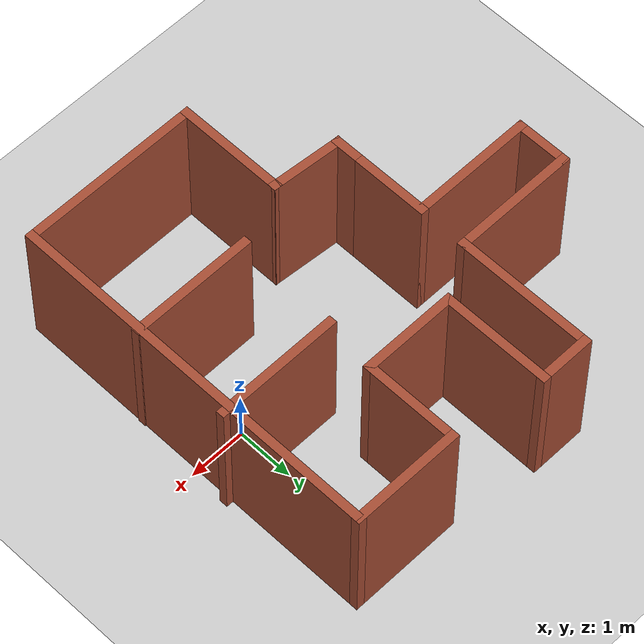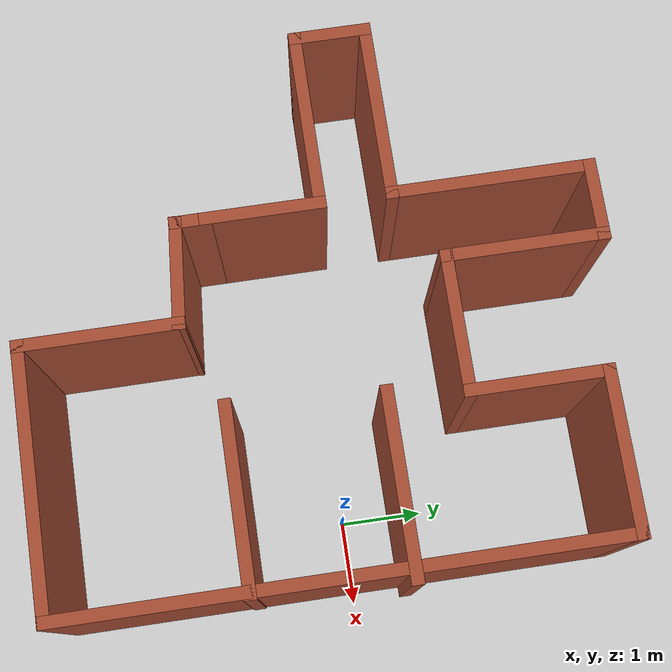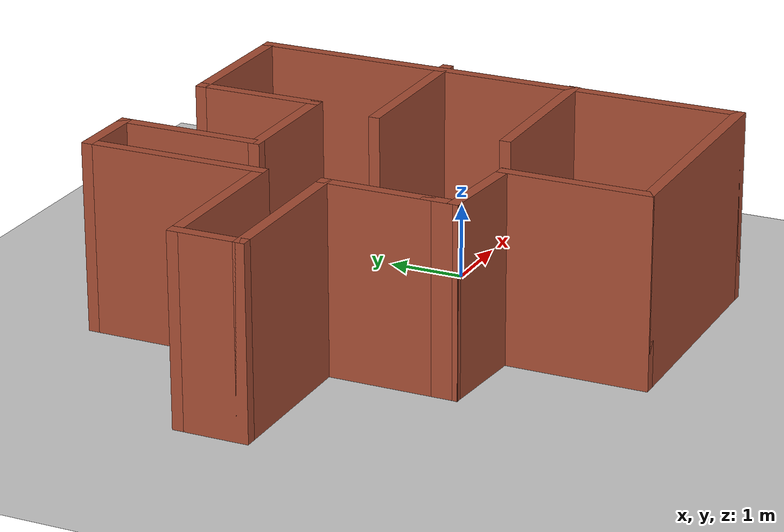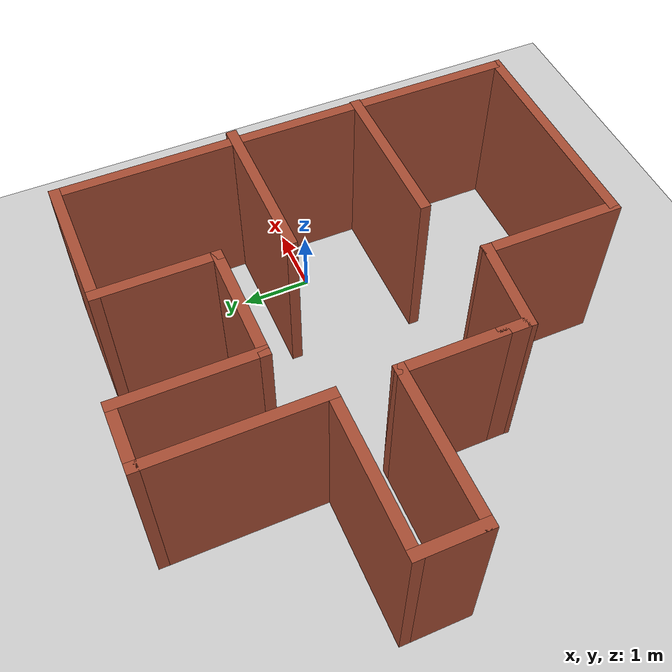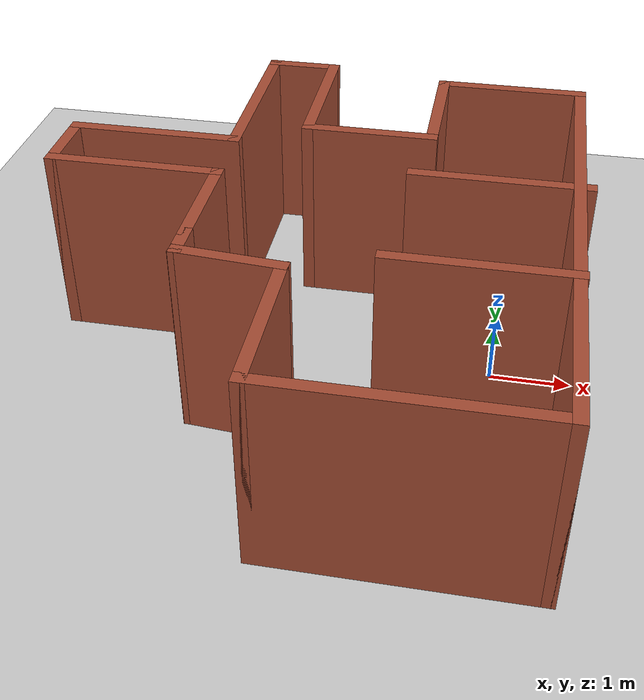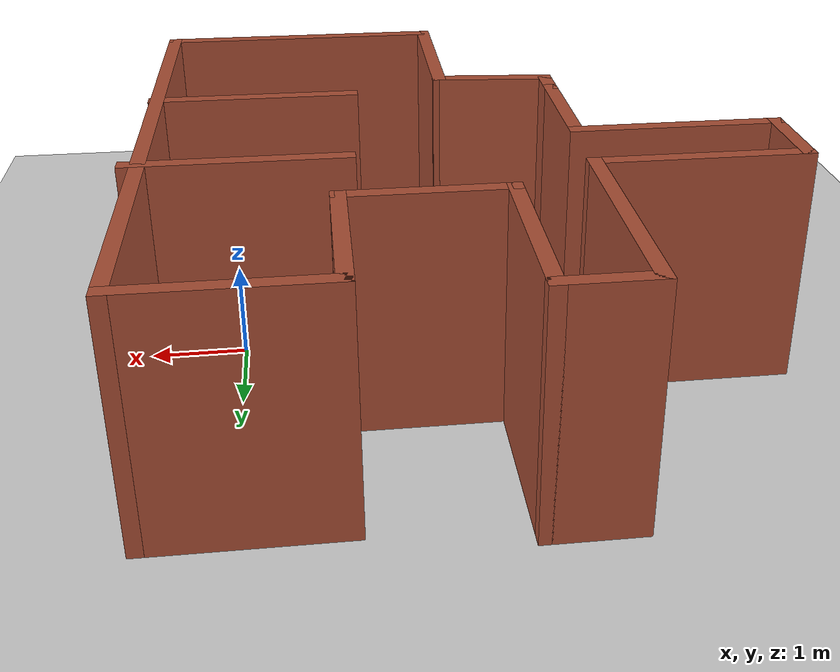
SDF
<sdf version="1.7">
 <world name="default">
  <light name="sun" type="directional">
   <pose>0 0 10 0 -0 0</pose>
   <diffuse>0.8 0.8 0.8 1</diffuse>
   <specular>0.2 0.2 0.2 1</specular>
   <attenuation>
    <range>1000</range>
    <constant>0.9</constant>
    <linear>0.01</linear>
    <quadratic>0.001</quadratic>
   </attenuation>
   <direction>-0.5 0.1 -0.9</direction>
   <spot><inner_angle>0</inner_angle><outer_angle>0</outer_angle><falloff>0</falloff></spot>
  </light>
  <model name="ground_plane">
   <static>1</static>
   <link name="link">
    <collision name="collision">
     <geometry><plane><normal>0 0 1</normal><size>100 100</size></plane></geometry>
     <surface>
      <contact><collide_bitmask>65535</collide_bitmask></contact>
      <friction><ode><mu>100</mu><mu2>50</mu2></ode></friction>
     </surface>
    </collision>
    <visual name="visual">
     <cast_shadows>0</cast_shadows>
     <geometry><plane><normal>0 0 1</normal><size>100 100</size></plane></geometry>
     <material>
      <script><uri>file://media/materials/scripts/gazebo.material</uri><name>Gazebo/Grey</name></script>
     </material>
    </visual>
   </link>
  </model>
  <gravity>0 0 -9.8</gravity>
  <magnetic_field>6e-06 2.3e-05 -4.2e-05</magnetic_field>
  <atmosphere type="adiabatic"/>
  <physics type="ode">
   <max_step_size>0.001</max_step_size>
   <real_time_factor>1</real_time_factor>
   <real_time_update_rate>1000</real_time_update_rate>
  </physics>
  <scene><ambient>0.4 0.4 0.4 1</ambient><background>0.7 0.7 0.7 1</background><shadows>1</shadows></scene>
  <spherical_coordinates>
   <surface_model>EARTH_WGS84</surface_model>
   <latitude_deg>0</latitude_deg>
   <longitude_deg>0</longitude_deg>
   <elevation>0</elevation>
   <heading_deg>0</heading_deg>
  </spherical_coordinates>
  <model name="my_world">
   <pose>-2.3287 0.005 0 0 -0 0</pose>
   <link name="Wall_0">
    <collision name="Wall_0_Collision">
     <geometry><box><size>2 0.15 2.5</size></box></geometry>
     <pose>0 0 1.25 0 -0 0</pose>
    </collision>
    <visual name="Wall_0_Visual">
     <pose>0 0 1.25 0 -0 0</pose>
     <geometry><box><size>2 0.15 2.5</size></box></geometry>
     <material>
      <script><uri>file://media/materials/scripts/gazebo.material</uri><name>Gazebo/Bricks</name></script>
      <ambient>1 1 1 1</ambient>
     </material>
     <meta><layer>0</layer></meta>
    </visual>
    <pose>0.038699 -2.5 0 0 -0 -1.5708</pose>
   </link>
   <link name="Wall_1">
    <collision name="Wall_1_Collision">
     <geometry><box><size>3.25 0.15 2.5</size></box></geometry>
     <pose>0 0 1.25 0 -0 0</pose>
    </collision>
    <visual name="Wall_1_Visual">
     <pose>0 0 1.25 0 -0 0</pose>
     <geometry><box><size>3.25 0.15 2.5</size></box></geometry>
     <material>
      <script><uri>file://media/materials/scripts/gazebo.material</uri><name>Gazebo/Bricks</name></script>
      <ambient>1 1 1 1</ambient>
     </material>
     <meta><layer>0</layer></meta>
    </visual>
    <pose>1.5887 -3.425 0 0 -0 0</pose>
   </link>
   <link name="Wall_10">
    <collision name="Wall_10_Collision">
     <geometry><box><size>1 0.15 2.5</size></box></geometry>
     <pose>0 0 1.25 0 -0 0</pose>
    </collision>
    <visual name="Wall_10_Visual">
     <pose>0 0 1.25 0 -0 0</pose>
     <geometry><box><size>1 0.15 2.5</size></box></geometry>
     <material>
      <script><uri>file://media/materials/scripts/gazebo.material</uri><name>Gazebo/Bricks</name></script>
      <ambient>1 1 1 1</ambient>
     </material>
     <meta><layer>0</layer></meta>
    </visual>
    <pose>-3.2613 0.65 0 0 -0 -1.5708</pose>
   </link>
   <link name="Wall_11">
    <collision name="Wall_11_Collision">
     <geometry><box><size>2.25 0.15 2.5</size></box></geometry>
     <pose>0 0 1.25 0 -0 0</pose>
    </collision>
    <visual name="Wall_11_Visual">
     <pose>0 0 1.25 0 -0 0</pose>
     <geometry><box><size>2.25 0.15 2.5</size></box></geometry>
     <material>
      <script><uri>file://media/materials/scripts/gazebo.material</uri><name>Gazebo/Bricks</name></script>
      <ambient>1 1 1 1</ambient>
     </material>
     <meta><layer>0</layer></meta>
    </visual>
    <pose>-2.2113 0.225 0 0 -0 0</pose>
   </link>
   <link name="Wall_12">
    <collision name="Wall_12_Collision">
     <geometry><box><size>1.5 0.15 2.5</size></box></geometry>
     <pose>0 0 1.25 0 -0 0</pose>
    </collision>
    <visual name="Wall_12_Visual">
     <pose>0 0 1.25 0 -0 0</pose>
     <geometry><box><size>1.5 0.15 2.5</size></box></geometry>
     <material>
      <script><uri>file://media/materials/scripts/gazebo.material</uri><name>Gazebo/Bricks</name></script>
      <ambient>1 1 1 1</ambient>
     </material>
     <meta><layer>0</layer></meta>
    </visual>
    <pose>-1.1613 -0.45 0 0 -0 -1.5708</pose>
   </link>
   <link name="Wall_13">
    <collision name="Wall_13_Collision">
     <geometry><box><size>0.5 0.15 2.5</size></box></geometry>
     <pose>0 0 1.25 0 -0 0</pose>
    </collision>
    <visual name="Wall_13_Visual">
     <pose>0 0 1.25 0 -0 0</pose>
     <geometry><box><size>0.5 0.15 2.5</size></box></geometry>
     <material>
      <script><uri>file://media/materials/scripts/gazebo.material</uri><name>Gazebo/Bricks</name></script>
      <ambient>1 1 1 1</ambient>
     </material>
     <meta><layer>0</layer></meta>
    </visual>
    <pose>-1.1613 -1.3 0 0 -0 -1.5708</pose>
   </link>
   <link name="Wall_14">
    <collision name="Wall_14_Collision">
     <geometry><box><size>1.35416 0.15 2.5</size></box></geometry>
     <pose>0 0 1.25 0 -0 0</pose>
    </collision>
    <visual name="Wall_14_Visual">
     <pose>0 0 1.25 0 -0 0</pose>
     <geometry><box><size>1.35416 0.15 2.5</size></box></geometry>
     <material>
      <script><uri>file://media/materials/scripts/gazebo.material</uri><name>Gazebo/Bricks</name></script>
      <ambient>1 1 1 1</ambient>
     </material>
     <meta><layer>0</layer></meta>
    </visual>
    <pose>-0.561301 -1.525 0 0 -0 -0.083141</pose>
   </link>
   <link name="Wall_16">
    <collision name="Wall_16_Collision">
     <geometry><box><size>2.25 0.15 2.5</size></box></geometry>
     <pose>0 0 1.25 0 -0 0</pose>
    </collision>
    <visual name="Wall_16_Visual">
     <pose>0 0 1.25 0 -0 0</pose>
     <geometry><box><size>2.25 0.15 2.5</size></box></geometry>
     <material>
      <script><uri>file://media/materials/scripts/gazebo.material</uri><name>Gazebo/Bricks</name></script>
      <ambient>1 1 1 1</ambient>
     </material>
     <meta><layer>0</layer></meta>
    </visual>
    <pose>2.2113 0.650384 0 0 -0 3.14159</pose>
   </link>
   <link name="Wall_18">
    <collision name="Wall_18_Collision">
     <geometry><box><size>2.25 0.15 2.5</size></box></geometry>
     <pose>0 0 1.25 0 -0 0</pose>
    </collision>
    <visual name="Wall_18_Visual">
     <pose>0 0 1.25 0 -0 0</pose>
     <geometry><box><size>2.25 0.15 2.5</size></box></geometry>
     <material>
      <script><uri>file://media/materials/scripts/gazebo.material</uri><name>Gazebo/Bricks</name></script>
      <ambient>1 1 1 1</ambient>
     </material>
     <meta><layer>0</layer></meta>
    </visual>
    <pose>2.10576 -1.17891 0 0 -0 3.14159</pose>
   </link>
   <link name="Wall_2">
    <collision name="Wall_2_Collision">
     <geometry><box><size>6.75 0.15 2.5</size></box></geometry>
     <pose>0 0 1.25 0 -0 0</pose>
    </collision>
    <visual name="Wall_2_Visual">
     <pose>0 0 1.25 0 -0 0</pose>
     <geometry><box><size>6.75 0.15 2.5</size></box></geometry>
     <material>
      <script><uri>file://media/materials/scripts/gazebo.material</uri><name>Gazebo/Bricks</name></script>
      <ambient>1 1 1 1</ambient>
     </material>
     <meta><layer>0</layer></meta>
    </visual>
    <pose>3.1387 -0.125 0 0 -0 1.5708</pose>
   </link>
   <link name="Wall_3">
    <collision name="Wall_3_Collision">
     <geometry><box><size>2 0.15 2.5</size></box></geometry>
     <pose>0 0 1.25 0 -0 0</pose>
    </collision>
    <visual name="Wall_3_Visual">
     <pose>0 0 1.25 0 -0 0</pose>
     <geometry><box><size>2 0.15 2.5</size></box></geometry>
     <material>
      <script><uri>file://media/materials/scripts/gazebo.material</uri><name>Gazebo/Bricks</name></script>
      <ambient>1 1 1 1</ambient>
     </material>
     <meta><layer>0</layer></meta>
    </visual>
    <pose>2.2137 3.175 0 0 -0 3.14159</pose>
   </link>
   <link name="Wall_4">
    <collision name="Wall_4_Collision">
     <geometry><box><size>1.75 0.15 2.5</size></box></geometry>
     <pose>0 0 1.25 0 -0 0</pose>
    </collision>
    <visual name="Wall_4_Visual">
     <pose>0 0 1.25 0 -0 0</pose>
     <geometry><box><size>1.75 0.15 2.5</size></box></geometry>
     <material>
      <script><uri>file://media/materials/scripts/gazebo.material</uri><name>Gazebo/Bricks</name></script>
      <ambient>1 1 1 1</ambient>
     </material>
     <meta><layer>0</layer></meta>
    </visual>
    <pose>1.2887 2.375 0 0 -0 -1.5708</pose>
   </link>
   <link name="Wall_5">
    <collision name="Wall_5_Collision">
     <geometry><box><size>1.75 0.15 2.5</size></box></geometry>
     <pose>0 0 1.25 0 -0 0</pose>
    </collision>
    <visual name="Wall_5_Visual">
     <pose>0 0 1.25 0 -0 0</pose>
     <geometry><box><size>1.75 0.15 2.5</size></box></geometry>
     <material>
      <script><uri>file://media/materials/scripts/gazebo.material</uri><name>Gazebo/Bricks</name></script>
      <ambient>1 1 1 1</ambient>
     </material>
     <meta><layer>0</layer></meta>
    </visual>
    <pose>0.488699 1.575 0 0 -0 3.14159</pose>
   </link>
   <link name="Wall_6">
    <collision name="Wall_6_Collision">
     <geometry><box><size>2 0.15 2.5</size></box></geometry>
     <pose>0 0 1.25 0 -0 0</pose>
    </collision>
    <visual name="Wall_6_Visual">
     <pose>0 0 1.25 0 -0 0</pose>
     <geometry><box><size>2 0.15 2.5</size></box></geometry>
     <material>
      <script><uri>file://media/materials/scripts/gazebo.material</uri><name>Gazebo/Bricks</name></script>
      <ambient>1 1 1 1</ambient>
     </material>
     <meta><layer>0</layer></meta>
    </visual>
    <pose>-0.311301 2.5 0 0 -0 1.5708</pose>
   </link>
   <link name="Wall_7">
    <collision name="Wall_7_Collision">
     <geometry><box><size>1 0.15 2.5</size></box></geometry>
     <pose>0 0 1.25 0 -0 0</pose>
    </collision>
    <visual name="Wall_7_Visual">
     <pose>0 0 1.25 0 -0 0</pose>
     <geometry><box><size>1 0.15 2.5</size></box></geometry>
     <material>
      <script><uri>file://media/materials/scripts/gazebo.material</uri><name>Gazebo/Bricks</name></script>
      <ambient>1 1 1 1</ambient>
     </material>
     <meta><layer>0</layer></meta>
    </visual>
    <pose>-0.736301 3.425 0 0 -0 3.14159</pose>
   </link>
   <link name="Wall_8">
    <collision name="Wall_8_Collision">
     <geometry><box><size>2.5 0.15 2.5</size></box></geometry>
     <pose>0 0 1.25 0 -0 0</pose>
    </collision>
    <visual name="Wall_8_Visual">
     <pose>0 0 1.25 0 -0 0</pose>
     <geometry><box><size>2.5 0.15 2.5</size></box></geometry>
     <material>
      <script><uri>file://media/materials/scripts/gazebo.material</uri><name>Gazebo/Bricks</name></script>
      <ambient>1 1 1 1</ambient>
     </material>
     <meta><layer>0</layer></meta>
    </visual>
    <pose>-1.1613 2.25 0 0 -0 -1.5708</pose>
   </link>
   <link name="Wall_9">
    <collision name="Wall_9_Collision">
     <geometry><box><size>2.25 0.15 2.5</size></box></geometry>
     <pose>0 0 1.25 0 -0 0</pose>
    </collision>
    <visual name="Wall_9_Visual">
     <pose>0 0 1.25 0 -0 0</pose>
     <geometry><box><size>2.25 0.15 2.5</size></box></geometry>
     <material>
      <script><uri>file://media/materials/scripts/gazebo.material</uri><name>Gazebo/Bricks</name></script>
      <ambient>1 1 1 1</ambient>
     </material>
     <meta><layer>0</layer></meta>
    </visual>
    <pose>-2.2113 1.075 0 0 -0 3.14159</pose>
   </link>
   <static>1</static>
  </model>
 </world>
</sdf>
